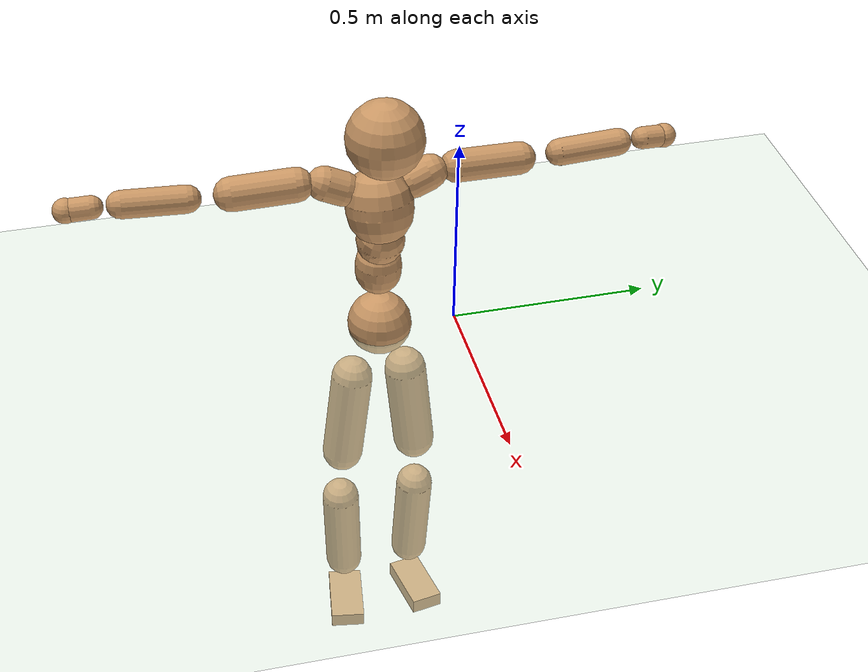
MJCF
<mujoco model="humanoid">
  <compiler coordinate="local" angle="radian"/>
  <default>
    <joint damping="0.0" armature="0.01" stiffness="0.0" limited="true"/>
    <geom conaffinity="1" condim="3" contype="7" margin="0.001" rgba="0.8 0.6 .4 1"/>
  </default>
  <asset>
    <texture type="skybox" builtin="gradient" rgb1=".4 .5 .6" rgb2="0 0 0" width="100" height="100"/>
    <texture builtin="flat" height="1278" mark="cross" markrgb="1 1 1" name="texgeom" random="0.01" rgb1="0.8 0.6 0.4" rgb2="0.8 0.6 0.4" type="cube" width="127"/>
    <texture builtin="checker" height="100" name="texplane" rgb1="0 0 0" rgb2="0.8 0.8 0.8" type="2d" width="100"/>
    <material name="MatPlane" reflectance="0.5" shininess="1" specular="1" texrepeat="60 60" texture="texplane"/>
    <material name="geom" texture="texgeom" texuniform="true"/>
  </asset>
  <worldbody>
    <light cutoff="100" diffuse="1 1 1" dir="-0 0 -1.3" directional="true" exponent="1" pos="0 0 1.3" specular=".1 .1 .1"/>
    <geom conaffinity="1" condim="3" name="floor" pos="0 0 0" rgba="0.8 0.9 0.8 1" size="100 100 .2" type="plane" material="MatPlane"/>
    <body name="Pelvis" pos="-0.0013 -0.1927 0.0131">
      <freejoint name="Pelvis"/>
      <geom type="sphere" contype="1" conaffinity="1" density="500" size="0.0807" pos="0.0000 0.0000 0.0000" name="Pelvis"/>
      <body name="L_Hip" pos="-0.0154 0.0623 -0.0879">
        <joint name="L_Hip_x" type="hinge" pos="0 0 0" axis="1 0 0" stiffness="800" damping="80" armature="0.02" range="-180.0000 180.0000"/>
        <joint name="L_Hip_y" type="hinge" pos="0 0 0" axis="0 1 0" stiffness="800" damping="80" armature="0.02" range="-180.0000 180.0000"/>
        <joint name="L_Hip_z" type="hinge" pos="0 0 0" axis="0 0 1" stiffness="800" damping="80" armature="0.02" range="-180.0000 180.0000"/>
        <geom type="capsule" contype="1" conaffinity="1" density="500" fromto="0.0005 0.0085 -0.0823 0.0020 0.0339 -0.3294" size="0.0532" name="L_Hip"/>
        <body name="L_Knee" pos="0.0025 0.0424 -0.4117">
          <joint name="L_Knee_x" type="hinge" pos="0 0 0" axis="1 0 0" stiffness="800" damping="80" armature="0.02" range="-180.0000 180.0000"/>
          <joint name="L_Knee_y" type="hinge" pos="0 0 0" axis="0 1 0" stiffness="800" damping="80" armature="0.02" range="-180.0000 180.0000"/>
          <joint name="L_Knee_z" type="hinge" pos="0 0 0" axis="0 0 1" stiffness="800" damping="80" armature="0.02" range="-180.0000 180.0000"/>
          <geom type="capsule" contype="1" conaffinity="1" density="500" fromto="-0.0082 -0.0026 -0.0869 -0.0327 -0.0104 -0.3477" size="0.0482" name="L_Knee"/>
          <body name="L_Ankle" pos="-0.0409 -0.013 -0.4347">
            <joint name="L_Ankle_x" type="hinge" pos="0 0 0" axis="1 0 0" stiffness="800" damping="80" armature="0.02" range="-180.0000 180.0000"/>
            <joint name="L_Ankle_y" type="hinge" pos="0 0 0" axis="0 1 0" stiffness="800" damping="80" armature="0.02" range="-180.0000 180.0000"/>
            <joint name="L_Ankle_z" type="hinge" pos="0 0 0" axis="0 0 1" stiffness="800" damping="80" armature="0.02" range="-180.0000 180.0000"/>
            <geom type="box" contype="1" conaffinity="1" density="500" pos="0.0596 0.0108 -0.0300" size="0.0824 0.0419 0.0214" quat="0.9960 0.0000 0.0000 0.0892" name="L_Ankle"/>
            <body name="L_Toe" pos="0.1191 0.0215 -0.0599">
              <joint name="L_Toe_x" type="hinge" pos="0 0 0" axis="1 0 0" stiffness="500" damping="50" armature="0.02" range="-180.0000 180.0000"/>
              <joint name="L_Toe_y" type="hinge" pos="0 0 0" axis="0 1 0" stiffness="500" damping="50" armature="0.02" range="-180.0000 180.0000"/>
              <joint name="L_Toe_z" type="hinge" pos="0 0 0" axis="0 0 1" stiffness="500" damping="50" armature="0.02" range="-180.0000 180.0000"/>
              <geom type="box" contype="1" conaffinity="1" density="500" pos="0.0000 0.0000 0.0302" size="0.0008 0.0021 0.0011" quat="0.9954 0.0000 0.0000 0.0957" name="L_Toe"/>
            </body>
          </body>
        </body>
      </body>
      <body name="R_Hip" pos="-0.0105 -0.0602 -0.0865">
        <joint name="R_Hip_x" type="hinge" pos="0 0 0" axis="1 0 0" stiffness="800" damping="80" armature="0.02" range="-180.0000 180.0000"/>
        <joint name="R_Hip_y" type="hinge" pos="0 0 0" axis="0 1 0" stiffness="800" damping="80" armature="0.02" range="-180.0000 180.0000"/>
        <joint name="R_Hip_z" type="hinge" pos="0 0 0" axis="0 0 1" stiffness="800" damping="80" armature="0.02" range="-180.0000 180.0000"/>
        <geom type="capsule" contype="1" conaffinity="1" density="500" fromto="-0.0001 -0.0096 -0.0840 -0.0003 -0.0384 -0.3360" size="0.0523" name="R_Hip"/>
        <body name="R_Knee" pos="-0.0003 -0.048 -0.42">
          <joint name="R_Knee_x" type="hinge" pos="0 0 0" axis="1 0 0" stiffness="800" damping="80" armature="0.02" range="-180.0000 180.0000"/>
          <joint name="R_Knee_y" type="hinge" pos="0 0 0" axis="0 1 0" stiffness="800" damping="80" armature="0.02" range="-180.0000 180.0000"/>
          <joint name="R_Knee_z" type="hinge" pos="0 0 0" axis="0 0 1" stiffness="800" damping="80" armature="0.02" range="-180.0000 180.0000"/>
          <geom type="capsule" contype="1" conaffinity="1" density="500" fromto="-0.0076 0.0034 -0.0870 -0.0304 0.0137 -0.3479" size="0.0487" name="R_Knee"/>
          <body name="R_Ankle" pos="-0.038 0.0171 -0.4349">
            <joint name="R_Ankle_x" type="hinge" pos="0 0 0" axis="1 0 0" stiffness="800" damping="80" armature="0.02" range="-180.0000 180.0000"/>
            <joint name="R_Ankle_y" type="hinge" pos="0 0 0" axis="0 1 0" stiffness="800" damping="80" armature="0.02" range="-180.0000 180.0000"/>
            <joint name="R_Ankle_z" type="hinge" pos="0 0 0" axis="0 0 1" stiffness="800" damping="80" armature="0.02" range="-180.0000 180.0000"/>
            <geom type="box" contype="1" conaffinity="1" density="500" pos="0.0610 -0.0095 -0.0252" size="0.0852 0.0448 0.0203" quat="0.9970 0.0000 0.0000 -0.0769" name="R_Ankle"/>
            <body name="R_Toe" pos="0.1221 -0.0189 -0.0505">
              <joint name="R_Toe_x" type="hinge" pos="0 0 0" axis="1 0 0" stiffness="500" damping="50" armature="0.02" range="-180.0000 180.0000"/>
              <joint name="R_Toe_y" type="hinge" pos="0 0 0" axis="0 1 0" stiffness="500" damping="50" armature="0.02" range="-180.0000 180.0000"/>
              <joint name="R_Toe_z" type="hinge" pos="0 0 0" axis="0 0 1" stiffness="500" damping="50" armature="0.02" range="-180.0000 180.0000"/>
              <geom type="box" contype="1" conaffinity="1" density="500" pos="0.0000 0.0000 0.0274" size="0.0008 0.0022 0.0011" quat="0.9977 0.0000 0.0000 -0.0678" name="R_Toe"/>
            </body>
          </body>
        </body>
      </body>
      <body name="Torso" pos="-0.0119 -0.0024 0.0999">
        <joint name="Torso_x" type="hinge" pos="0 0 0" axis="1 0 0" stiffness="1000" damping="100" armature="0.02" range="-180.0000 180.0000"/>
        <joint name="Torso_y" type="hinge" pos="0 0 0" axis="0 1 0" stiffness="1000" damping="100" armature="0.02" range="-180.0000 180.0000"/>
        <joint name="Torso_z" type="hinge" pos="0 0 0" axis="0 0 1" stiffness="1000" damping="100" armature="0.02" range="-180.0000 180.0000"/>
        <geom type="capsule" contype="1" conaffinity="1" density="500" fromto="0.0016 0.0023 0.0768 0.0011 0.0016 0.0512" size="0.0575" name="Torso"/>
        <body name="Spine" pos="0.0027 0.0039 0.1281">
          <joint name="Spine_x" type="hinge" pos="0 0 0" axis="1 0 0" stiffness="1000" damping="100" armature="0.02" range="-180.0000 180.0000"/>
          <joint name="Spine_y" type="hinge" pos="0 0 0" axis="0 1 0" stiffness="1000" damping="100" armature="0.02" range="-180.0000 180.0000"/>
          <joint name="Spine_z" type="hinge" pos="0 0 0" axis="0 0 1" stiffness="1000" damping="100" armature="0.02" range="-180.0000 180.0000"/>
          <geom type="capsule" contype="1" conaffinity="1" density="500" fromto="0.0121 0.0009 0.0291 0.0081 0.0006 0.0194" size="0.0598" name="Spine"/>
          <body name="Chest" pos="0.0202 0.0016 0.0485">
            <joint name="Chest_x" type="hinge" pos="0 0 0" axis="1 0 0" stiffness="1000" damping="100" armature="0.02" range="-180.0000 180.0000"/>
            <joint name="Chest_y" type="hinge" pos="0 0 0" axis="0 1 0" stiffness="1000" damping="100" armature="0.02" range="-180.0000 180.0000"/>
            <joint name="Chest_z" type="hinge" pos="0 0 0" axis="0 0 1" stiffness="1000" damping="100" armature="0.02" range="-180.0000 180.0000"/>
            <geom type="capsule" contype="1" conaffinity="1" density="500" fromto="-0.0202 -0.0018 0.0843 -0.0134 -0.0012 0.0562" size="0.0827" name="Chest"/>
            <body name="Neck" pos="-0.0311 -0.0057 0.2042">
              <joint name="Neck_x" type="hinge" pos="0 0 0" axis="1 0 0" stiffness="500" damping="50" armature="0.02" range="-180.0000 180.0000"/>
              <joint name="Neck_y" type="hinge" pos="0 0 0" axis="0 1 0" stiffness="500" damping="50" armature="0.02" range="-180.0000 180.0000"/>
              <joint name="Neck_z" type="hinge" pos="0 0 0" axis="0 0 1" stiffness="500" damping="50" armature="0.02" range="-180.0000 180.0000"/>
              <geom type="capsule" contype="1" conaffinity="1" density="500" fromto="0.0118 0.0015 0.0151 0.0471 0.0059 0.0606" size="0.0377" name="Neck"/>
              <body name="Head" pos="0.0589 0.0073 0.0757">
                <joint name="Head_x" type="hinge" pos="0 0 0" axis="1 0 0" stiffness="500" damping="50" armature="0.02" range="-180.0000 180.0000"/>
                <joint name="Head_y" type="hinge" pos="0 0 0" axis="0 1 0" stiffness="500" damping="50" armature="0.02" range="-180.0000 180.0000"/>
                <joint name="Head_z" type="hinge" pos="0 0 0" axis="0 0 1" stiffness="500" damping="50" armature="0.02" range="-180.0000 180.0000"/>
                <geom type="sphere" contype="1" conaffinity="1" density="500" size="0.0944" pos="0.0000 0.0000 0.0000" name="Head"/>
              </body>
            </body>
            <body name="L_Thorax" pos="-0.033 0.0654 0.1093">
              <joint name="L_Thorax_x" type="hinge" pos="0 0 0" axis="1 0 0" stiffness="500" damping="50" armature="0.02" range="-180.0000 180.0000"/>
              <joint name="L_Thorax_y" type="hinge" pos="0 0 0" axis="0 1 0" stiffness="500" damping="50" armature="0.02" range="-180.0000 180.0000"/>
              <joint name="L_Thorax_z" type="hinge" pos="0 0 0" axis="0 0 1" stiffness="500" damping="50" armature="0.02" range="-180.0000 180.0000"/>
              <geom type="capsule" contype="1" conaffinity="1" density="500" fromto="-0.0006 0.0148 0.0062 -0.0026 0.0594 0.0249" size="0.0434" name="L_Thorax"/>
              <body name="L_Shoulder" pos="-0.0032 0.0742 0.0311">
                <joint name="L_Shoulder_x" type="hinge" pos="0 0 0" axis="1 0 0" stiffness="500" damping="50" armature="0.02" range="-720.0000 720.0000"/>
                <joint name="L_Shoulder_y" type="hinge" pos="0 0 0" axis="0 1 0" stiffness="500" damping="50" armature="0.02" range="-720.0000 720.0000"/>
                <joint name="L_Shoulder_z" type="hinge" pos="0 0 0" axis="0 0 1" stiffness="500" damping="50" armature="0.02" range="-720.0000 720.0000"/>
                <geom type="capsule" contype="1" conaffinity="1" density="500" fromto="-0.0049 0.0533 -0.0035 -0.0195 0.2130 -0.0140" size="0.0402" name="L_Shoulder"/>
                <body name="L_Elbow" pos="-0.0244 0.2663 -0.0175">
                  <joint name="L_Elbow_x" type="hinge" pos="0 0 0" axis="1 0 0" stiffness="500" damping="50" armature="0.02" range="-720.0000 720.0000"/>
                  <joint name="L_Elbow_y" type="hinge" pos="0 0 0" axis="0 1 0" stiffness="500" damping="50" armature="0.02" range="-720.0000 720.0000"/>
                  <joint name="L_Elbow_z" type="hinge" pos="0 0 0" axis="0 0 1" stiffness="500" damping="50" armature="0.02" range="-720.0000 720.0000"/>
                  <geom type="capsule" contype="1" conaffinity="1" density="500" fromto="-0.0008 0.0497 0.0022 -0.0031 0.1987 0.0086" size="0.0333" name="L_Elbow"/>
                  <body name="L_Wrist" pos="-0.0038 0.2483 0.0108">
                    <joint name="L_Wrist_x" type="hinge" pos="0 0 0" axis="1 0 0" stiffness="300" damping="30" armature="0.02" range="-180.0000 180.0000"/>
                    <joint name="L_Wrist_y" type="hinge" pos="0 0 0" axis="0 1 0" stiffness="300" damping="30" armature="0.02" range="-180.0000 180.0000"/>
                    <joint name="L_Wrist_z" type="hinge" pos="0 0 0" axis="0 0 1" stiffness="300" damping="30" armature="0.02" range="-180.0000 180.0000"/>
                    <geom type="capsule" contype="1" conaffinity="1" density="500" fromto="-0.0026 0.0150 -0.0019 -0.0103 0.0598 -0.0075" size="0.0275" name="L_Wrist"/>
                    <body name="L_Hand" pos="-0.0129 0.0748 -0.0094">
                      <joint name="L_Hand_x" type="hinge" pos="0 0 0" axis="1 0 0" stiffness="300" damping="30" armature="0.02" range="-180.0000 180.0000"/>
                      <joint name="L_Hand_y" type="hinge" pos="0 0 0" axis="0 1 0" stiffness="300" damping="30" armature="0.02" range="-180.0000 180.0000"/>
                      <joint name="L_Hand_z" type="hinge" pos="0 0 0" axis="0 0 1" stiffness="300" damping="30" armature="0.02" range="-180.0000 180.0000"/>
                      <geom type="sphere" contype="1" conaffinity="1" density="500" size="0.0300" pos="0.0000 0.0000 0.0000" name="L_Hand"/>
                    </body>
                  </body>
                </body>
              </body>
            </body>
            <body name="R_Thorax" pos="-0.0367 -0.0686 0.1081">
              <joint name="R_Thorax_x" type="hinge" pos="0 0 0" axis="1 0 0" stiffness="500" damping="50" armature="0.02" range="-180.0000 180.0000"/>
              <joint name="R_Thorax_y" type="hinge" pos="0 0 0" axis="0 1 0" stiffness="500" damping="50" armature="0.02" range="-180.0000 180.0000"/>
              <joint name="R_Thorax_z" type="hinge" pos="0 0 0" axis="0 0 1" stiffness="500" damping="50" armature="0.02" range="-180.0000 180.0000"/>
              <geom type="capsule" contype="1" conaffinity="1" density="500" fromto="-0.0010 -0.0153 0.0067 -0.0041 -0.0610 0.0267" size="0.0423" name="R_Thorax"/>
              <body name="R_Shoulder" pos="-0.0051 -0.0763 0.0333">
                <joint name="R_Shoulder_x" type="hinge" pos="0 0 0" axis="1 0 0" stiffness="500" damping="50" armature="0.02" range="-720.0000 720.0000"/>
                <joint name="R_Shoulder_y" type="hinge" pos="0 0 0" axis="0 1 0" stiffness="500" damping="50" armature="0.02" range="-720.0000 720.0000"/>
                <joint name="R_Shoulder_z" type="hinge" pos="0 0 0" axis="0 0 1" stiffness="500" damping="50" armature="0.02" range="-720.0000 720.0000"/>
                <geom type="capsule" contype="1" conaffinity="1" density="500" fromto="-0.0037 -0.0510 -0.0034 -0.0147 -0.2040 -0.0134" size="0.0422" name="R_Shoulder"/>
                <body name="R_Elbow" pos="-0.0184 -0.255 -0.0168">
                  <joint name="R_Elbow_x" type="hinge" pos="0 0 0" axis="1 0 0" stiffness="500" damping="50" armature="0.02" range="-720.0000 720.0000"/>
                  <joint name="R_Elbow_y" type="hinge" pos="0 0 0" axis="0 1 0" stiffness="500" damping="50" armature="0.02" range="-720.0000 720.0000"/>
                  <joint name="R_Elbow_z" type="hinge" pos="0 0 0" axis="0 0 1" stiffness="500" damping="50" armature="0.02" range="-720.0000 720.0000"/>
                  <geom type="capsule" contype="1" conaffinity="1" density="500" fromto="-0.0019 -0.0515 0.0015 -0.0075 -0.2061 0.0059" size="0.0339" name="R_Elbow"/>
                  <body name="R_Wrist" pos="-0.0094 -0.2577 0.0073">
                    <joint name="R_Wrist_x" type="hinge" pos="0 0 0" axis="1 0 0" stiffness="300" damping="30" armature="0.02" range="-180.0000 180.0000"/>
                    <joint name="R_Wrist_y" type="hinge" pos="0 0 0" axis="0 1 0" stiffness="300" damping="30" armature="0.02" range="-180.0000 180.0000"/>
                    <joint name="R_Wrist_z" type="hinge" pos="0 0 0" axis="0 0 1" stiffness="300" damping="30" armature="0.02" range="-180.0000 180.0000"/>
                    <geom type="capsule" contype="1" conaffinity="1" density="500" fromto="-0.0019 -0.0151 -0.0014 -0.0077 -0.0606 -0.0056" size="0.0284" name="R_Wrist"/>
                    <body name="R_Hand" pos="-0.0096 -0.0757 -0.0069">
                      <joint name="R_Hand_x" type="hinge" pos="0 0 0" axis="1 0 0" stiffness="300" damping="30" armature="0.02" range="-180.0000 180.0000"/>
                      <joint name="R_Hand_y" type="hinge" pos="0 0 0" axis="0 1 0" stiffness="300" damping="30" armature="0.02" range="-180.0000 180.0000"/>
                      <joint name="R_Hand_z" type="hinge" pos="0 0 0" axis="0 0 1" stiffness="300" damping="30" armature="0.02" range="-180.0000 180.0000"/>
                      <geom type="sphere" contype="1" conaffinity="1" density="500" size="0.0303" pos="0.0000 0.0000 0.0000" name="R_Hand"/>
                    </body>
                  </body>
                </body>
              </body>
            </body>
          </body>
        </body>
      </body>
    </body>
  </worldbody>
  <actuator>
    <motor name="L_Hip_x" joint="L_Hip_x" gear="500"/>
    <motor name="L_Hip_y" joint="L_Hip_y" gear="500"/>
    <motor name="L_Hip_z" joint="L_Hip_z" gear="500"/>
    <motor name="L_Knee_x" joint="L_Knee_x" gear="500"/>
    <motor name="L_Knee_y" joint="L_Knee_y" gear="500"/>
    <motor name="L_Knee_z" joint="L_Knee_z" gear="500"/>
    <motor name="L_Ankle_x" joint="L_Ankle_x" gear="500"/>
    <motor name="L_Ankle_y" joint="L_Ankle_y" gear="500"/>
    <motor name="L_Ankle_z" joint="L_Ankle_z" gear="500"/>
    <motor name="L_Toe_x" joint="L_Toe_x" gear="500"/>
    <motor name="L_Toe_y" joint="L_Toe_y" gear="500"/>
    <motor name="L_Toe_z" joint="L_Toe_z" gear="500"/>
    <motor name="R_Hip_x" joint="R_Hip_x" gear="500"/>
    <motor name="R_Hip_y" joint="R_Hip_y" gear="500"/>
    <motor name="R_Hip_z" joint="R_Hip_z" gear="500"/>
    <motor name="R_Knee_x" joint="R_Knee_x" gear="500"/>
    <motor name="R_Knee_y" joint="R_Knee_y" gear="500"/>
    <motor name="R_Knee_z" joint="R_Knee_z" gear="500"/>
    <motor name="R_Ankle_x" joint="R_Ankle_x" gear="500"/>
    <motor name="R_Ankle_y" joint="R_Ankle_y" gear="500"/>
    <motor name="R_Ankle_z" joint="R_Ankle_z" gear="500"/>
    <motor name="R_Toe_x" joint="R_Toe_x" gear="500"/>
    <motor name="R_Toe_y" joint="R_Toe_y" gear="500"/>
    <motor name="R_Toe_z" joint="R_Toe_z" gear="500"/>
    <motor name="Torso_x" joint="Torso_x" gear="500"/>
    <motor name="Torso_y" joint="Torso_y" gear="500"/>
    <motor name="Torso_z" joint="Torso_z" gear="500"/>
    <motor name="Spine_x" joint="Spine_x" gear="500"/>
    <motor name="Spine_y" joint="Spine_y" gear="500"/>
    <motor name="Spine_z" joint="Spine_z" gear="500"/>
    <motor name="Chest_x" joint="Chest_x" gear="500"/>
    <motor name="Chest_y" joint="Chest_y" gear="500"/>
    <motor name="Chest_z" joint="Chest_z" gear="500"/>
    <motor name="Neck_x" joint="Neck_x" gear="500"/>
    <motor name="Neck_y" joint="Neck_y" gear="500"/>
    <motor name="Neck_z" joint="Neck_z" gear="500"/>
    <motor name="Head_x" joint="Head_x" gear="500"/>
    <motor name="Head_y" joint="Head_y" gear="500"/>
    <motor name="Head_z" joint="Head_z" gear="500"/>
    <motor name="L_Thorax_x" joint="L_Thorax_x" gear="500"/>
    <motor name="L_Thorax_y" joint="L_Thorax_y" gear="500"/>
    <motor name="L_Thorax_z" joint="L_Thorax_z" gear="500"/>
    <motor name="L_Shoulder_x" joint="L_Shoulder_x" gear="500"/>
    <motor name="L_Shoulder_y" joint="L_Shoulder_y" gear="500"/>
    <motor name="L_Shoulder_z" joint="L_Shoulder_z" gear="500"/>
    <motor name="L_Elbow_x" joint="L_Elbow_x" gear="500"/>
    <motor name="L_Elbow_y" joint="L_Elbow_y" gear="500"/>
    <motor name="L_Elbow_z" joint="L_Elbow_z" gear="500"/>
    <motor name="L_Wrist_x" joint="L_Wrist_x" gear="500"/>
    <motor name="L_Wrist_y" joint="L_Wrist_y" gear="500"/>
    <motor name="L_Wrist_z" joint="L_Wrist_z" gear="500"/>
    <motor name="L_Hand_x" joint="L_Hand_x" gear="500"/>
    <motor name="L_Hand_y" joint="L_Hand_y" gear="500"/>
    <motor name="L_Hand_z" joint="L_Hand_z" gear="500"/>
    <motor name="R_Thorax_x" joint="R_Thorax_x" gear="500"/>
    <motor name="R_Thorax_y" joint="R_Thorax_y" gear="500"/>
    <motor name="R_Thorax_z" joint="R_Thorax_z" gear="500"/>
    <motor name="R_Shoulder_x" joint="R_Shoulder_x" gear="500"/>
    <motor name="R_Shoulder_y" joint="R_Shoulder_y" gear="500"/>
    <motor name="R_Shoulder_z" joint="R_Shoulder_z" gear="500"/>
    <motor name="R_Elbow_x" joint="R_Elbow_x" gear="500"/>
    <motor name="R_Elbow_y" joint="R_Elbow_y" gear="500"/>
    <motor name="R_Elbow_z" joint="R_Elbow_z" gear="500"/>
    <motor name="R_Wrist_x" joint="R_Wrist_x" gear="500"/>
    <motor name="R_Wrist_y" joint="R_Wrist_y" gear="500"/>
    <motor name="R_Wrist_z" joint="R_Wrist_z" gear="500"/>
    <motor name="R_Hand_x" joint="R_Hand_x" gear="500"/>
    <motor name="R_Hand_y" joint="R_Hand_y" gear="500"/>
    <motor name="R_Hand_z" joint="R_Hand_z" gear="500"/>
  </actuator>
  <contact>
    <exclude body1="Torso" body2="Chest"/>
    <exclude body1="Head" body2="Chest"/>
    <exclude body1="R_Knee" body2="R_Toe"/>
    <exclude body1="R_Knee" body2="L_Ankle"/>
    <exclude body1="R_Knee" body2="L_Toe"/>
    <exclude body1="L_Knee" body2="L_Toe"/>
    <exclude body1="L_Knee" body2="R_Ankle"/>
    <exclude body1="L_Knee" body2="R_Toe"/>
    <exclude body1="L_Shoulder" body2="Chest"/>
    <exclude body1="R_Shoulder" body2="Chest"/>
  </contact>
  <sensor/>
  <size njmax="700" nconmax="700"/>
</mujoco>
